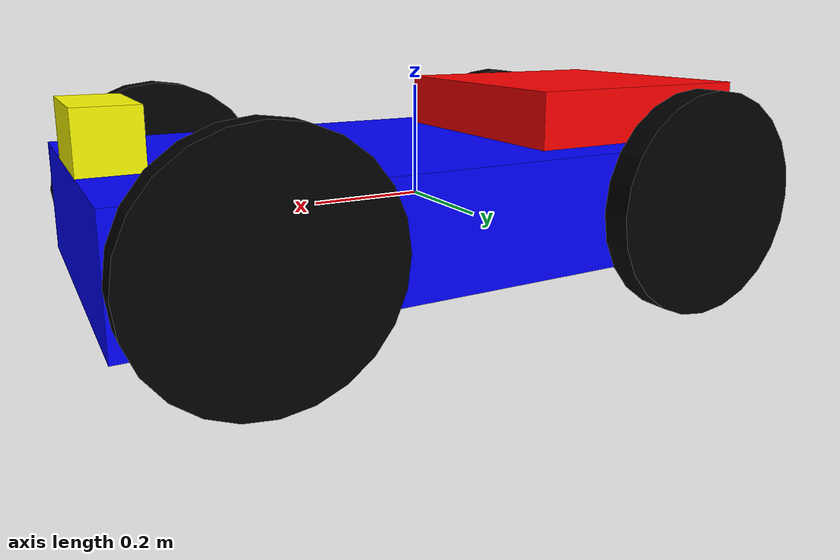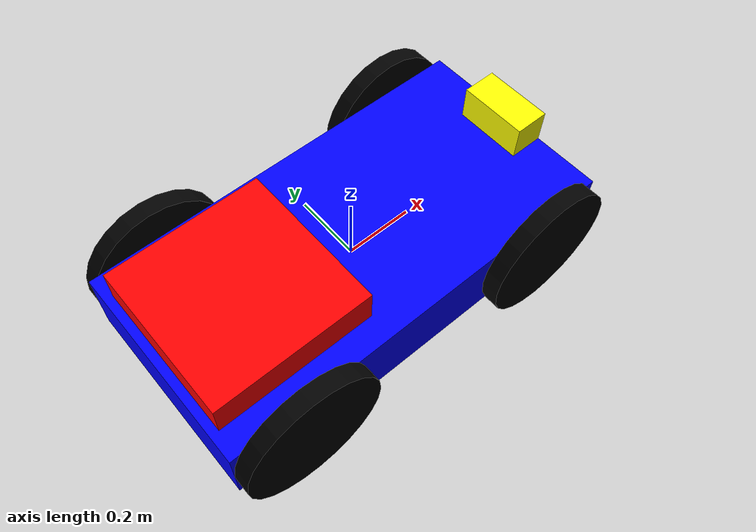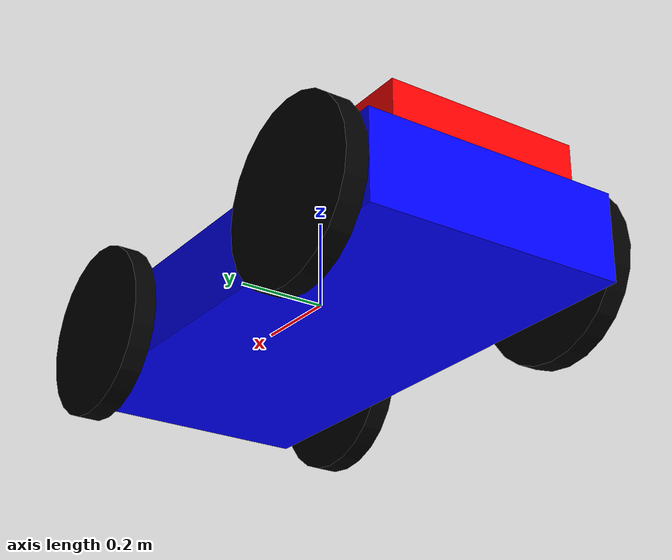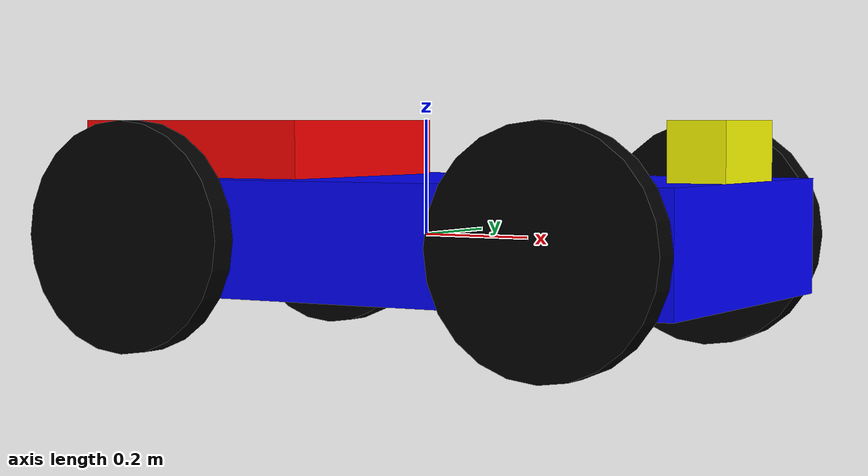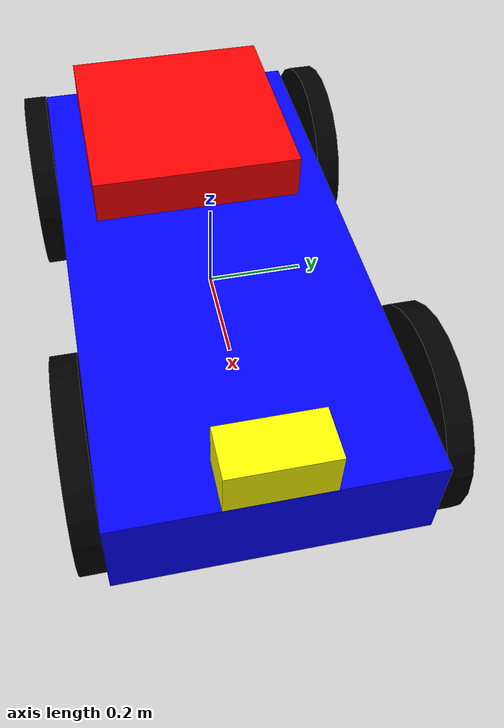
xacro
<?xml version="1.0"?>
<robot name="mobile_robot_base" xmlns:xacro="http://www.ros.org/wiki/xacro">

<!-- Include xacro-->
<xacro:include filename="$(find mobile_robot_base_ros1)/urdf/common_macro.xacro" />
<xacro:include filename="$(find mobile_robot_base_ros1)/urdf/corpus.xacro" />
<xacro:include filename="$(find mobile_robot_base_ros1)/urdf/wheel.xacro" />
<xacro:include filename="$(find mobile_robot_base_ros1)/urdf/camera.xacro" />
<xacro:include filename="$(find mobile_robot_base_ros1)/urdf/control_block.xacro" />

<!-- Include materials-->
<material name="Black">
    <color rgba="0.0 0.0 0.0 1.0"/>
</material>

<material name="White">
    <color rgba="1.0 1.0 1.0 1.0"/>
</material>

<material name="Blue">
    <color rgba="0.0 0.0 1.0 1.0"/>

</material>

<material name="Red">
    <color rgba="1.0 0.0 0.0 1.0"/>
</material>

<!-- constants -->
<xacro:property name="PI" value="3.14"/>

<!-- chassis property -->
<xacro:property name="corpus_len" value="1.2"/>
<xacro:property name="corpus_width" value="0.6"/>
<xacro:property name="corpus_height" value="0.2"/>
<xacro:property name="corpus_mass" value="10"/>

<!-- wheel property -->
<xacro:property name="wheel_radius" value="0.2"/>
<xacro:property name="wheel_width" value="0.05"/>
<xacro:property name="wheel_mass" value="1.0"/>

<xacro:property name="hinge_wheel_limit" value="${PI/3}"/>

<xacro:corpus
    link_name="base_link"
    length="${corpus_len}"
    width="${corpus_width}"
    height="${corpus_height}"
    mass="${corpus_mass}" />

<!-- Add 4 wheel -->

<xacro:wheel
    link_name="front_left_wheel_link"
    radius="${wheel_radius}"
    length="${wheel_width}"
    mass="${wheel_mass}"/>

<xacro:wheel
    link_name="front_right_wheel_link"
    radius="${wheel_radius}"
    length="${wheel_width}"
    mass="${wheel_mass}"/>

<xacro:wheel
    link_name="back_left_wheel_link"
    radius="${wheel_radius}"
    length="${wheel_width}"
    mass="${wheel_mass}"/>

<xacro:wheel
    link_name="back_right_wheel_link"
    radius="${wheel_radius}"
    length="${wheel_width}"
    mass="${wheel_mass}"/>

<!-- Front left weel -->

<joint name="front_left_wheel_joint" type="continuous">
    <parent link="base_link"/>
    <child link="front_left_wheel_link"/>
    <axis xyz="0 0 1"/>
    <origin
        xyz="${(corpus_len/2)-(wheel_radius)} ${(corpus_width/2)+(wheel_width/2)} 0"
        rpy="${PI/2} 0 0" />
    <limit effort= "30" velocity="1.0"/>
    <dynamics damping="0.0" friction="0.0"/>
</joint>

<xacro:Transmission_rotation_block joint_name="front_left_wheel_joint"/>

<!-- Front right wheel -->

<joint name="front_right_wheel_joint" type="continuous">
    <parent link="base_link"/>
    <child link="front_right_wheel_link"/>
    <axis xyz="0 0 1"/>
    <origin
        xyz="${(corpus_len/2)-(wheel_radius)} ${(-corpus_width/2)-(wheel_width/2)} 0"
        rpy="${PI/2} 0 0" />
    <limit effort= "30" velocity="1.0"/>
    <dynamics damping="0.0" friction="0.0"/>
</joint>

<xacro:Transmission_rotation_block joint_name="front_right_wheel_joint"/>

<!-- Back left wheel -->

<joint name="back_left_wheel_joint" type="continuous">
    <parent link="base_link"/>
    <child link="back_left_wheel_link"/>
    <axis xyz="0 0 1"/>
    <origin
        xyz="${(-corpus_len/2)+(wheel_radius)} ${(+corpus_width/2)+(wheel_width/2)} 0"
        rpy="${PI/2} 0 0" />
    <limit effort= "30" velocity="1.0"/>
    <dynamics damping="0.0" friction="0.0"/>
</joint>

<xacro:Transmission_rotation_block joint_name="back_left_wheel_joint"/>

<!-- Back right wheel -->

<joint name="back_right_wheel_joint" type="continuous">
    <parent link="base_link"/>
    <child link="back_right_wheel_link"/>
    <axis xyz="0 0 1"/>
    <origin
        xyz="${(-corpus_len/2)+(wheel_radius)} ${(-corpus_width/2)-(wheel_width/2)} 0"
        rpy="${PI/2} 0 0" />
    <limit effort= "30" velocity="1.0"/>
    <dynamics damping="0.0" friction="0.0"/>
</joint>

<xacro:Transmission_rotation_block joint_name="back_right_wheel_joint"/>

<!-- Conntrol block -->

<xacro:control_block
    link_name="control_block_link"
    length="0.45"
    width="0.45"
    height="0.1"
    mass="3"/>

<joint name="control_block_joint" type="fixed">
    <parent link="base_link"/>
    <child link="control_block_link"/>
    <origin xyz="${-corpus_len/2+0.25} 0.0 ${corpus_height/2}" rpy="0 0 0"/>
</joint>

<!-- Camera -->

<xacro:camera
    link_name="camera_link"
    length="0.1"
    width="0.2"
    height="0.1"
    mass="1"/>

<joint name="camera_joint" type="continuous">
    <parent link="base_link"/>
    <child link="camera_link"/>
    <axis xyz="0 0 1"/>
    <origin xyz="${corpus_len/2-0.05} 0.0 ${corpus_height/2}" rpy="0 0 0"/>
    <limit effort="30" velocity="1.0"/>
</joint>

<xacro:Fixed_rotation_block joint_name="camera_joint"/>

<!-- Add ROS plugin so we can interact with our robot -->
<gazebo>
    <plugin name="gazebo_ros_control" filename="libgazebo_ros_control.so">
        <robotNamespace>/</robotNamespace>
    </plugin>
</gazebo>

</robot>

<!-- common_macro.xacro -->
<robot name="mobile_robot_base" xmlns:xacro="http://www.ros.org/wiki/xacro">

<!-- Macro for cylinder inertial model -->
<xacro:macro name="cylinder_inertia" params ="m r h">
  <inertial>
   <mass value="${m}"/> <!-- Cylinder mass -->
   <!-- Formulas to calculate inertia moments for cylinder -->
   <inertia ixx="${m*(3*r*r+h*h)/12}"  ixy="0.0" ixz="0.0"
            iyy="${m*(3*r*r+h*h)/12}"  iyz="0.0" izz="${m*r*r/2}"/>
   </inertial>
</xacro:macro>

<!-- Macro for base inertial model -->
<xacro:macro name= "inertial_matrix" params="mass">
  <inertial>
    <mass value="${mass}"/> <!-- Base mass -->
    <!-- Set identity matrix for inertia moments -->
    <inertia
        ixx="1.0" ixy="0.0"
        iyy="1.0" iyz="0.0"
        izz="1.0" ixz="0.0"/>
   </inertial>
 </xacro:macro>

<!-- Macro for sphere inertial model -->
<xacro:macro name="inertial_sphere" params="mass radius *origin">
    <inertial>
        <xacro:insert_block name="origin"/>
        <mass value="${mass}" /> <!-- Sphere mass -->
        <!-- Formulas to calculate inertia moments for sphere -->
        <inertia ixx="${(2/5) * mass * (radius*radius)}" ixy="0.0" ixz="0.0"
                iyy="${(2/5) * mass * (radius*radius)}" iyz="0.0"
                izz="${(2/5) * mass * (radius*radius)}" />
    </inertial>
</xacro:macro>

<xacro:macro name="inertial_box" params="mass x y z *origin">
    <inertial>
        <xacro:insert_block name="origin"/>
        <mass value="${mass}" /> <!-- Box mass -->
        <!-- Formulas to calculate inertia moments for box -->
        <inertia ixx="${(1/12) * mass * (y*y+z*z)}" ixy="0.0" ixz="0.0"
                iyy="${(1/12) * mass * (x*x+z*z)}" iyz="0.0"
                izz="${(1/12) * mass * (x*x+y*y)}" />
    </inertial>
</xacro:macro>

<xacro:macro name="inertial_cylinder" params="mass length radius *origin">
    <inertial>
        <xacro:insert_block name="origin"/>
        <mass value="${mass}" /> <!-- Cylinder mass -->
        <!-- Formulas to calculate inertia moments for cylinder -->
        <inertia ixx="${(1/12) * mass * (3*radius*radius + length*length)}" ixy="0.0" ixz="0.0"
                iyy="${(1/12) * mass * (3*radius*radius + length*length)}" iyz="0.0"
                izz="${(1/2) * mass * (radius*radius)}" />
    </inertial>
</xacro:macro>

<!-- Transmission block for cylinder rotation -->
<xacro:macro name="Transmission_rotation_block" params="joint_name">
    <transmission name="${joint_name}_rotation_trans">
        <type>transmission_interface/SimpleTransmission</type>
        <actuator name="${joint_name}_motor">
            <mechanicalReduction>1</mechanicalReduction>
        </actuator>
        <joint name="${joint_name}">
            <hardwareInterface>hardware_interface/VelocityJointInterface</hardwareInterface>
        </joint>
    </transmission>
</xacro:macro>

<!-- Fixed transmission block for cylinder rotation -->
<xacro:macro name="Fixed_rotation_block" params="joint_name">
    <transmission name="${joint_name}_fixed_rotation">
        <type>transmission_interface/SimpleTransmission</type>
        <actuator name="$${joint_name}_motor">
          <mechanicalReduction>1</mechanicalReduction>
        </actuator>
        <joint name="${joint_name}">
          <hardwareInterface>hardware_interface/PositionJointInterface</hardwareInterface>
        </joint>
      </transmission>
</xacro:macro>
</robot>

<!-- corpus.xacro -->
<robot name="mobile_robot_base" xmlns:xacro="http://www.ros.org/wiki/xacro">

<!-- Including a common macro -->
<xacro:include filename="$(find mobile_robot_base_ros1)/urdf/common_macro.xacro" />

<!-- Macro for creating the robot body -->
<xacro:macro
    name="corpus"
    params="
        link_name
        length
        width
        height
        mass">
    <link name="${link_name}">
        <!-- Visual representation of the body -->
        <visual>
            <origin
                rpy= "0 0 0"
                xyz= "0 0 0"/>
            <geometry>
                <box size="${length} ${width} ${height}"/>
            </geometry>
            <!-- Material for visualization in blue color -->
            <material name="Blue">
                <color rgba="0.0 0.0 1.0 1.0"/>
            </material>
        </visual>
        <!-- Collision representation of the body -->
        <collision>
             <origin
                rpy= "0 0 0"
                xyz= "0 0 0"/>
            <geometry>
                <box size="${length} ${width} ${height}"/>
            </geometry>
        </collision>
        <!-- Calculation of the inertial matrix for the body -->
        <xacro:inertial_matrix mass="${mass}"/>
    </link>

    <!-- Specifying material for visualization in the Gazebo environment -->
    <gazebo reference ="${link_name}">
        <material>Gazebo/Blue</material>
     </gazebo>
</xacro:macro>
</robot>

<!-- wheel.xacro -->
<robot name="mobile_robot_base" xmlns:xacro="http://www.ros.org/wiki/xacro">

<xacro:include filename="$(find mobile_robot_base_ros1)/urdf/common_macro.xacro" />

<!-- Macro definition for creating a wheel -->
<xacro:macro
    name="wheel"
    params="
        link_name
        radius
        length
        mass">
    <link name="${link_name}">
        <!-- Visual representation of the wheel -->
        <visual>
            <origin rpy="0 0 0" xyz="0 0 0"/>
            <geometry>
                <cylinder length="${length}" radius="${radius}"/>
            </geometry>
            <!-- Material for visualization in black color -->
            <material name="Black">
                <color rgba="0.0 0.0 0.0 0.9"/>
            </material>
        </visual>
        <!-- Collision representation of the wheel -->
        <collision>
            <origin rpy="0 0 0" xyz="0 0 0"/>
            <geometry>
                <cylinder length="${length}" radius="${radius}"/>
            </geometry>
        </collision>
        <!-- Calculation of inertia for the wheel -->
        <xacro:cylinder_inertia m="${mass}" r="${radius}" h="${length}"/>
    </link>
    <!-- Specifying material for visualization in Gazebo environment -->
    <gazebo reference ="${link_name}">
        <material>Gazebo/Black</material>
     </gazebo>
</xacro:macro>

<!-- Macro definition for creating a wheel hinge -->
<xacro:macro
    name="wheel_hinge"
    params="link_name">
    <link name="${link_name}">
        <!-- Visual representation of the hinge -->
        <visual>
            <origin rpy="0 0 0" xyz="0 0 0"/>
            <geometry>
                <cylinder length="0.01" radius="0.025"/>
            </geometry>
            <!-- Material for visualization in green color -->
            <material name="Green">
                <color rgba="0.0 1.0 0.0 1.0"/>
            </material>
        </visual>
        <!-- Calculation of inertia for the hinge -->
        <xacro:cylinder_inertia m="1" r="0.1" h="0.1"/>
    </link>
    <!-- Specifying material for visualization in Gazebo environment -->
    <gazebo reference ="${link_name}">
        <material>Gazebo/Green</material>
    </gazebo>
</xacro:macro>

</robot>

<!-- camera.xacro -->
<robot name="mobile_robot_base" xmlns:xacro="http://www.ros.org/wiki/xacro">

<!-- Including a common macro -->
<xacro:include filename="$(find mobile_robot_base_ros1)/urdf/common_macro.xacro" />

<!-- Macro for creating a camera -->
<xacro:macro
    name="camera"
    params="
        link_name
        length
        width
        height
        mass">
    <!-- Creating a link for the camera object -->
    <link name="${link_name}">
        <!-- Visual representation of the camera -->
        <visual>
            <!-- Defining the position and orientation of the camera -->
            <origin
                rpy= "0 0 0"
                xyz= "0 0 ${height/2}"/>
            <!-- Geometry of the camera -->
            <geometry>
                <box size="${length} ${width} ${height}"/>
            </geometry>
            <!-- Material for visualizing the camera (yellow) -->
            <material name="yellow">
                <color rgba="1 1 0 1"/>
            </material>
        </visual>
        <!-- Collision representation of the camera -->
        <collision>
            <!-- Defining the position and orientation of the camera -->
            <origin
                rpy= "0 0 0"
                xyz= "0 0 ${height/2}"/>
            <!-- Geometry of the camera -->
            <geometry>
                <box size="${length} ${width} ${height}"/>
            </geometry>
        </collision>
        <!-- Calculation of the inertial matrix for the camera -->
        <xacro:inertial_matrix mass="${mass}"/>
    </link>
    <!-- Specifying material for visualization in the Gazebo environment -->
    <gazebo reference ="${link_name}">
        <!-- Using material "Yellow" for visualization in Gazebo -->
        <material>Gazebo/Yellow</material>
        <!-- Adding a camera sensor -->
        <sensor type="camera" name="camera_1">
            <!-- Image update rate -->
            <update_rate>30.0</update_rate>
            <!-- Camera parameters -->
            <camera name="camera">
                <!-- Horizontal field of view -->
                <horizontal_fov>1.3962634</horizontal_fov>
                <!-- Image size -->
                <image>
                    <width>400</width>
                    <height>400</height>
                    <format>R8G8B8</format>
                </image>
                <!-- Clipping boundaries of the image -->
                <clip>
                    <near>0.02</near>
                    <far>300</far>
                </clip>
                <!-- Image noise -->
                <noise>
                    <type>gaussian</type>
                    <mean>0.0</mean>
                    <stddev>0.007</stddev>
                </noise>
            </camera>
            <!-- Plugin for controlling the camera in Gazebo -->
            <plugin name="camera_controller" filename="libgazebo_ros_camera.so">
                <!-- Always on -->
                <alwaysOn>true</alwaysOn>
                <!-- Update rate (0.0 for maximum) -->
                <updateRate>0.0</updateRate>
                <!-- Camera name -->
                <cameraName>camera</cameraName>
                <!-- Image topic name -->
                <imageTopicName>image_raw</imageTopicName>
                <!-- Camera info topic name -->
                <cameraInfoTopicName>camera_info</cameraInfoTopicName>
                <!-- Camera frame name -->
                <frameName>camera_link</frameName>
                <!-- Distortion settings (not used) -->
                <hackBaseline>0.07</hackBaseline>
                <distortionK1>0.0</distortionK1>
                <distortionK2>0.0</distortionK2>
                <distortionK3>0.0</distortionK3>
                <distortionT1>0.0</distortionT1>
                <distortionT2>0.0</distortionT2>
            </plugin>
        </sensor>
    </gazebo>
</xacro:macro>
</robot>

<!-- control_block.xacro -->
<robot name="mobile_robot_base" xmlns:xacro="http://www.ros.org/wiki/xacro">

<!-- Including a common macro -->
<xacro:include filename="$(find mobile_robot_base_ros1)/urdf/common_macro.xacro" />

<!-- Macro for creating a control block -->
<xacro:macro
    name="control_block"
    params="
        link_name
        length
        width
        height
        mass">
    <!-- Creating a link for the control block object -->
    <link name="${link_name}">
        <!-- Visual representation of the control block -->
        <visual>
            <!-- Defining the position and orientation of the control block -->
            <origin
                rpy= "0 0 0"
                xyz= "0 0 ${height/2}"/>
            <!-- Geometry of the control block -->
            <geometry>
                <box size="${length} ${width} ${height}"/>
            </geometry>
            <!-- Material for visualizing the control block (red) -->
            <material name="Red">
                <color rgba="1.0 0.0 0.0 1.0"/>
            </material>
        </visual>
        <!-- Collision representation of the control block -->
        <collision>
            <!-- Defining the position and orientation of the control block -->
            <origin
                rpy= "0 0 0"
                xyz= "0 0 ${height/2}"/>
            <!-- Geometry of the control block -->
            <geometry>
                <box size="${length} ${width} ${height}"/>
            </geometry>
        </collision>
        <!-- Calculation of the inertial matrix for the control block -->
        <xacro:inertial_matrix mass="${mass}"/>
    </link>
    <!-- Specifying material for visualization in the Gazebo environment -->
    <gazebo reference ="${link_name}">
        <!-- Using material "Red" for visualization in Gazebo -->
        <material>Gazebo/Red</material>
     </gazebo>
</xacro:macro>
</robot>
